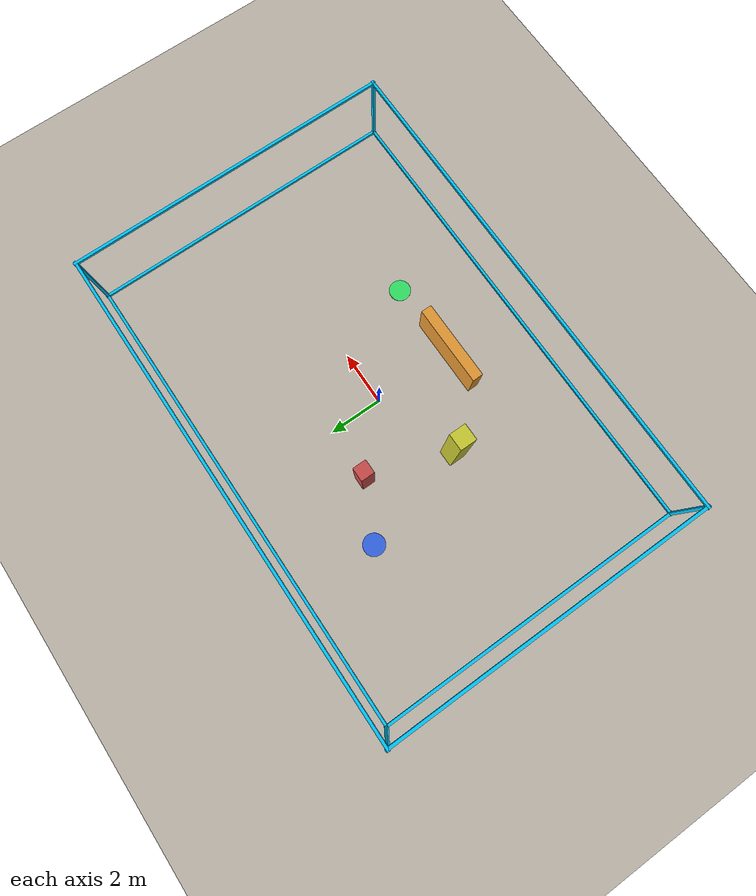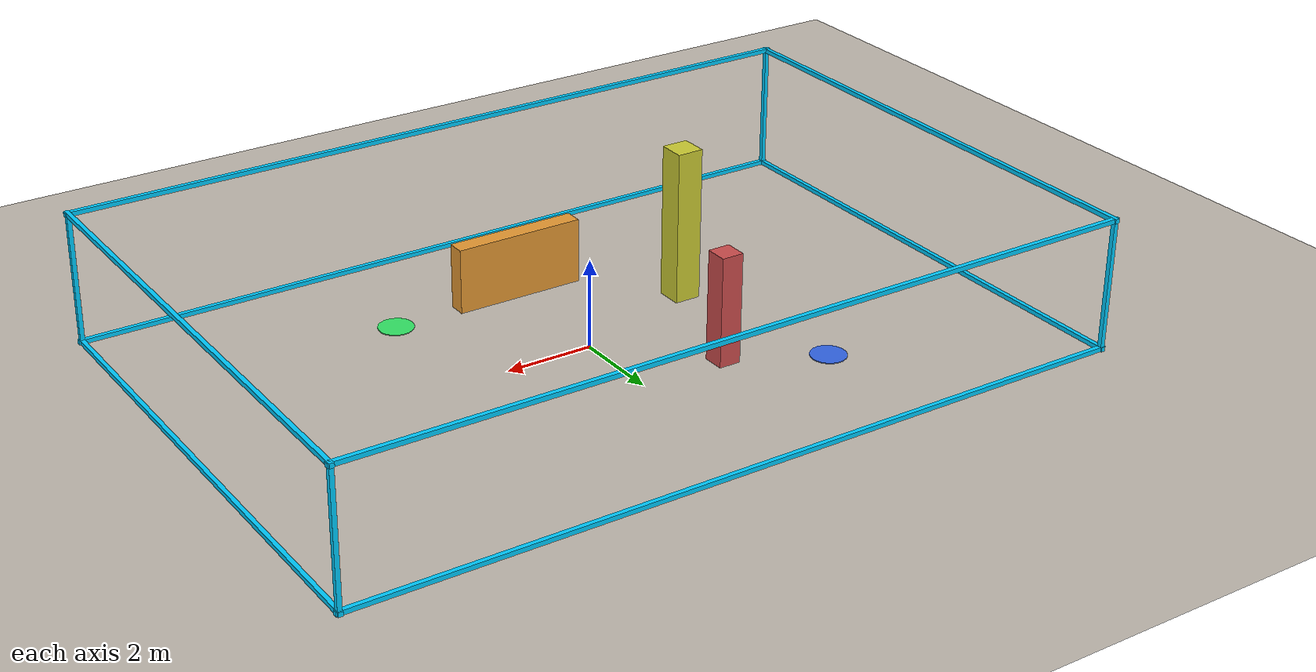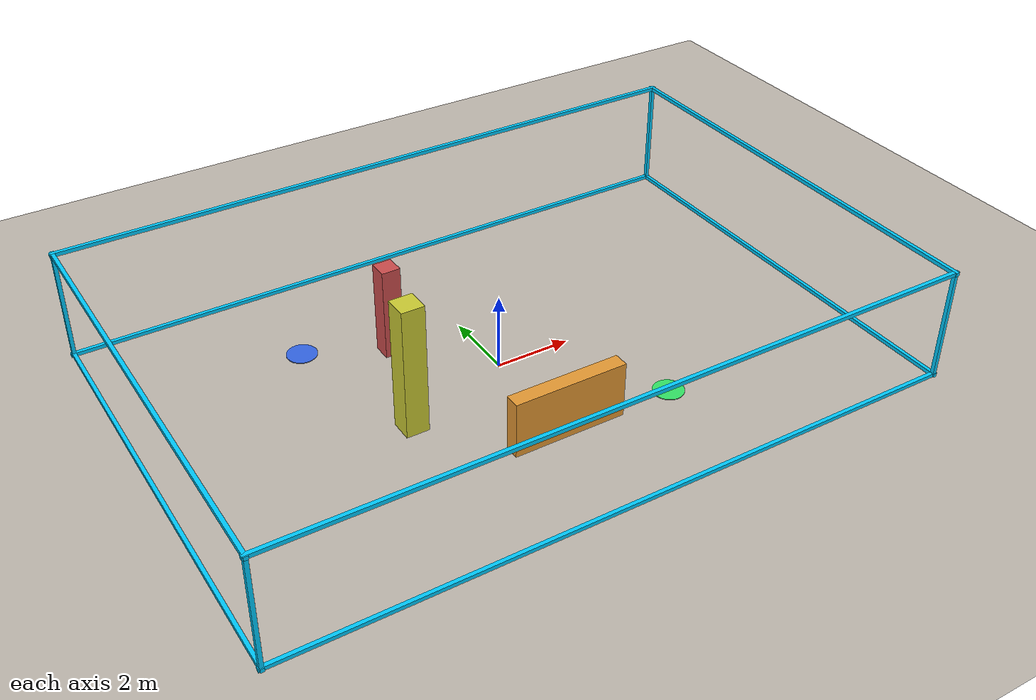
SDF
<?xml version="1.0" ?>
<sdf version="1.9">
  <world name="simple_obstacle_world">
    <physics type="ode">
      <max_step_size>0.004</max_step_size>
      <real_time_factor>1.0</real_time_factor>
      <real_time_update_rate>250</real_time_update_rate>
    </physics>
    <plugin name="gz::sim::systems::Physics" filename="gz-sim-physics-system"/>
    <plugin name="gz::sim::systems::UserCommands" filename="gz-sim-user-commands-system"/>
    <plugin name="gz::sim::systems::SceneBroadcaster" filename="gz-sim-scene-broadcaster-system"/>
    <plugin name="gz::sim::systems::Contact" filename="gz-sim-contact-system"/>
    <plugin name="gz::sim::systems::Imu" filename="gz-sim-imu-system"/>
    <plugin name="gz::sim::systems::AirPressure" filename="gz-sim-air-pressure-system"/>
    <plugin name="gz::sim::systems::ApplyLinkWrench" filename="gz-sim-apply-link-wrench-system"/>
    <plugin name="gz::sim::systems::Sensors" filename="gz-sim-sensors-system">
      <render_engine>ogre2</render_engine>
    </plugin>
    <gui fullscreen="false"/>

    <!-- Sunlight -->
    <light type="directional" name="sun">
      <cast_shadows>true</cast_shadows>
      <pose>0 0 10 0 0 0</pose>
      <diffuse>0.8 0.8 0.8 1</diffuse>
      <specular>0.2 0.2 0.2 1</specular>
      <attenuation>
        <range>1000</range>
        <constant>0.9</constant>
        <linear>0.01</linear>
        <quadratic>0.001</quadratic>
      </attenuation>
      <direction>-0.5 0.1 -0.9</direction>
    </light>

    <!-- GROUND PLANE — 18m x 12m -->
    <model name="ground_plane">
      <static>true</static>
      <pose>0 0 0 0 0 0</pose>
      <link name="link">
        <collision name="collision">
          <geometry><plane><normal>0 0 1</normal><size>18 12</size></plane></geometry>
          <surface><friction><ode><mu>100</mu><mu2>50</mu2></ode></friction></surface>
        </collision>
        <visual name="visual">
          <geometry><plane><normal>0 0 1</normal><size>18 12</size></plane></geometry>
          <material>
            <ambient>0.75 0.72 0.68 1</ambient>
            <diffuse>0.75 0.72 0.68 1</diffuse>
          </material>
        </visual>
      </link>
    </model>

    <!-- OUTER WALLS — Invisible collisions + cyan wireframe -->
    <model name="outer_walls">
      <static>true</static>
      <link name="walls_link">
        <collision name="c_north"><pose>0 6 1.5 0 0 0</pose><geometry><box><size>18 0.15 3</size></box></geometry></collision>
        <collision name="c_south"><pose>0 -6 1.5 0 0 0</pose><geometry><box><size>18 0.15 3</size></box></geometry></collision>
        <collision name="c_east"><pose>9 0 1.5 0 0 0</pose><geometry><box><size>0.15 12 3</size></box></geometry></collision>
        <collision name="c_west"><pose>-9 0 1.5 0 0 0</pose><geometry><box><size>0.15 12 3</size></box></geometry></collision>
        <collision name="c_ceiling"><pose>0 0 3 0 0 0</pose><geometry><box><size>18 12 0.1</size></box></geometry></collision>

        <!-- Cyan wireframe visual elements -->
        <visual name="vp_nw"><pose>-8.925 5.925 1.5 0 0 0</pose><geometry><box><size>0.1 0.1 3</size></box></geometry><material><ambient>0 0.8 1 1</ambient><diffuse>0 0.8 1 1</diffuse></material></visual>
        <visual name="vp_ne"><pose>8.925 5.925 1.5 0 0 0</pose><geometry><box><size>0.1 0.1 3</size></box></geometry><material><ambient>0 0.8 1 1</ambient><diffuse>0 0.8 1 1</diffuse></material></visual>
        <visual name="vp_sw"><pose>-8.925 -5.925 1.5 0 0 0</pose><geometry><box><size>0.1 0.1 3</size></box></geometry><material><ambient>0 0.8 1 1</ambient><diffuse>0 0.8 1 1</diffuse></material></visual>
        <visual name="vp_se"><pose>8.925 -5.925 1.5 0 0 0</pose><geometry><box><size>0.1 0.1 3</size></box></geometry><material><ambient>0 0.8 1 1</ambient><diffuse>0 0.8 1 1</diffuse></material></visual>
        <visual name="vt_n"><pose>0 5.925 3 0 0 0</pose><geometry><box><size>18 0.1 0.1</size></box></geometry><material><ambient>0 0.8 1 1</ambient><diffuse>0 0.8 1 1</diffuse></material></visual>
        <visual name="vt_s"><pose>0 -5.925 3 0 0 0</pose><geometry><box><size>18 0.1 0.1</size></box></geometry><material><ambient>0 0.8 1 1</ambient><diffuse>0 0.8 1 1</diffuse></material></visual>
        <visual name="vt_e"><pose>8.925 0 3 0 0 0</pose><geometry><box><size>0.1 12 0.1</size></box></geometry><material><ambient>0 0.8 1 1</ambient><diffuse>0 0.8 1 1</diffuse></material></visual>
        <visual name="vt_w"><pose>-8.925 0 3 0 0 0</pose><geometry><box><size>0.1 12 0.1</size></box></geometry><material><ambient>0 0.8 1 1</ambient><diffuse>0 0.8 1 1</diffuse></material></visual>
        <visual name="vb_n"><pose>0 5.925 0.05 0 0 0</pose><geometry><box><size>18 0.1 0.1</size></box></geometry><material><ambient>0 0.8 1 1</ambient><diffuse>0 0.8 1 1</diffuse></material></visual>
        <visual name="vb_s"><pose>0 -5.925 0.05 0 0 0</pose><geometry><box><size>18 0.1 0.1</size></box></geometry><material><ambient>0 0.8 1 1</ambient><diffuse>0 0.8 1 1</diffuse></material></visual>
        <visual name="vb_e"><pose>8.925 0 0.05 0 0 0</pose><geometry><box><size>0.1 12 0.1</size></box></geometry><material><ambient>0 0.8 1 1</ambient><diffuse>0 0.8 1 1</diffuse></material></visual>
        <visual name="vb_w"><pose>-8.925 0 0.05 0 0 0</pose><geometry><box><size>0.1 12 0.1</size></box></geometry><material><ambient>0 0.8 1 1</ambient><diffuse>0 0.8 1 1</diffuse></material></visual>
      </link>
    </model>

    <!-- SIMPLE OBSTACLES                                             -->

    <!-- Red Pillar (Left side) -->
    <model name="obstacle_red">
      <static>true</static>
      <pose>-2 2 1.25 0 0 0</pose>
      <link name="link">
        <collision name="c"><geometry><box><size>0.5 0.5 2.5</size></box></geometry></collision>
        <visual name="v"><geometry><box><size>0.5 0.5 2.5</size></box></geometry>
          <material><ambient>0.8 0.3 0.3 1</ambient><diffuse>0.8 0.3 0.3 1</diffuse></material>
        </visual>
      </link>
    </model>

    <!-- Yellow Pillar (Back Right) -->
    <model name="obstacle_yellow">
      <static>true</static>
      <pose>-3 -1 1.75 0 0 0</pose>
      <link name="link">
        <collision name="c"><geometry><box><size>0.6 0.6 3.5</size></box></geometry></collision>
        <visual name="v"><geometry><box><size>0.6 0.6 3.5</size></box></geometry>
          <material><ambient>0.8 0.8 0.2 1</ambient><diffuse>0.8 0.8 0.2 1</diffuse></material>
        </visual>
      </link>
    </model>

    <!-- Orange/Brown Block (Right side) -->
    <model name="obstacle_orange">
      <static>true</static>
      <pose>0 -3 0.75 0 0 0</pose>
      <link name="link">
        <collision name="c"><geometry><box><size>3.0 0.4 1.5</size></box></geometry></collision>
        <visual name="v"><geometry><box><size>3.0 0.4 1.5</size></box></geometry>
          <material><ambient>0.9 0.6 0.2 1</ambient><diffuse>0.9 0.6 0.2 1</diffuse></material>
        </visual>
      </link>
    </model>

    <!-- MARKERS (Start and Destination)                              -->

    <!-- Blue Marker (Back Left) -->
    <model name="marker_blue">
      <static>true</static>
      <pose>-4 3 0.01 0 0 0</pose>
      <link name="link">
        <visual name="v">
          <geometry><cylinder><radius>0.4</radius><length>0.02</length></cylinder></geometry>
          <material><ambient>0.2 0.4 0.9 1</ambient><diffuse>0.2 0.4 0.9 1</diffuse></material>
        </visual>
      </link>
    </model>

    <!-- Green Marker (Front Right) -->
    <model name="marker_green">
      <static>true</static>
      <pose>3 -3 0.01 0 0 0</pose>
      <link name="link">
        <visual name="v">
          <geometry><cylinder><radius>0.4</radius><length>0.02</length></cylinder></geometry>
          <material><ambient>0.2 0.9 0.4 1</ambient><diffuse>0.2 0.9 0.4 1</diffuse></material>
        </visual>
      </link>
    </model>

  </world>
</sdf>
